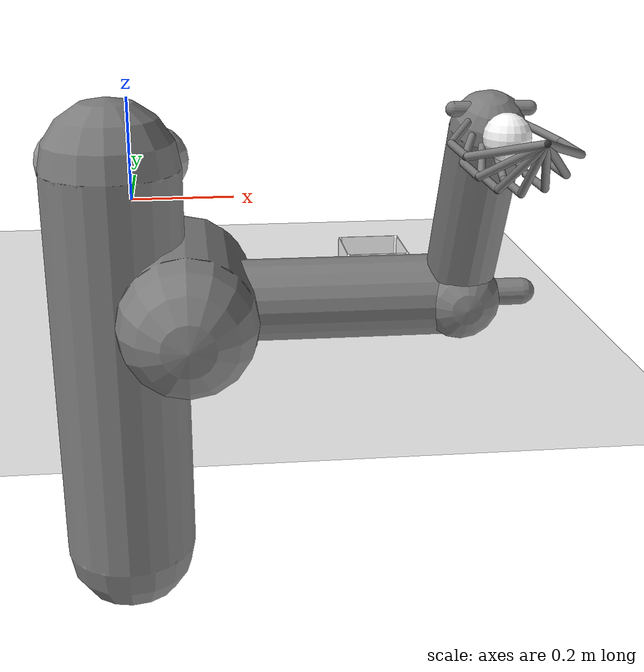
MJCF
<mujoco model="arm3d">
    <compiler inertiafromgeom="true" angle="radian" coordinate="local"/>
    <option timestep="0.01" gravity="0 0 -9.81" iterations="20" integrator="Euler"/>
    <default>
        <joint armature='0.75' damping="1" limited="true"/>
        <geom friction=".8 .1 .1" density="300" margin="0.002" condim="1" contype="0" conaffinity="0"/>
    </default>

    <worldbody>
        <light diffuse=".5 .5 .5" pos="0 0 3" dir="0 0 -1"/>

        <geom type="plane" pos="0 0.5 -0.325" size="1 1 0.1" contype="1" conaffinity="1"/>

        <body name="r_shoulder_pan_link" pos="0 -0.6 0">
            <geom name="e1" type="sphere" rgba="0.6 0.6 0.6 1" pos="-0.06 0.05 0.2" size="0.05" density="0.0001"/>
            <geom name="e2" type="sphere" rgba="0.6 0.6 0.6 1" pos=" 0.06 0.05 0.2" size="0.05" density="0.0001"/>
            <geom name="e1p" type="sphere" rgba="0.1 0.1 0.1 1" pos="-0.06 0.09 0.2" size="0.03" density="0.0001"/>
            <geom name="e2p" type="sphere" rgba="0.1 0.1 0.1 1" pos=" 0.06 0.09 0.2" size="0.03" density="0.0001"/>
            <geom name="sp" type="capsule" fromto="0 0 -0.4 0 0 0.2" size="0.1" density="1"/>
            <joint name="r_shoulder_pan_joint" type="hinge" pos="0 0 0" axis="0 0 1" range="-0.4854 1.214602"
                   damping="1.0"/>

            <body name="r_shoulder_lift_link" pos="0.1 0 0">
                <geom name="sl" type="capsule" fromto="0 -0.1 0 0 0.1 0" size="0.1" density="0.0001"/>
                <joint name="r_shoulder_lift_joint" type="hinge" pos="0 0 0" axis="0 1 0" range="-0.5236 0.7963"
                       damping="1.0"/>

                <body name="r_upper_arm_roll_link" pos="0 0 0">
                    <geom name="uar" type="capsule" fromto="-0.1 0 0 0.1 0 0" size="0.02" density="0.0001"/>
                    <joint name="r_upper_arm_roll_joint" type="hinge" pos="0 0 0" axis="1 0 0" range="-1.5 1.7"
                           damping="1.0"/>

                    <body name="r_upper_arm_link" pos="0 0 0">
                        <geom name="ua" type="capsule" fromto="0 0 0 0.4 0 0" size="0.06" density="0.0001"/>

                        <body name="r_elbow_flex_link" pos="0.4 0 0">
                            <geom name="ef" type="capsule" fromto="0 -0.02 0 0.0 0.02 0" size="0.06" density="0.0001"/>
                            <joint name="r_elbow_flex_joint" type="hinge" pos="0 0 0" axis="0 1 0" range="-0.7 0.7"
                                   damping="1.0"/>

                            <body name="r_forearm_roll_link" pos="0 0 0">
                                <geom name="fr" type="capsule" fromto="-0.1 0 0 0.1 0 0" size="0.02" density="0.0001"/>
                                <joint name="r_forearm_roll_joint" type="hinge" limited="true" pos="0 0 0" axis="1 0 0"
                                       damping="1.0" range="-1.5 1.5"/>

                                <body name="r_forearm_link" pos="0 0 0" axisangle="1 0 0 0.392">
                                    <geom name="fa" type="capsule" fromto="0 0 0 0 0 0.291" size="0.05"
                                          density="0.0001"/>

                                    <body name="r_wrist_flex_link" pos="0 0 0.321" axisangle="0 0 1 1.57">
                                        <geom name="wf" type="capsule" fromto="0 -0.02 0 0 0.02 0" size="0.01"
                                              density="0.0001"/>
                                        <joint name="r_wrist_flex_joint" type="hinge" pos="0 0 0" axis="0 0 1"
                                               range="-1.0 1.0" damping="1.0"/>

                                        <body name="r_wrist_roll_link" pos="0 0 0" axisangle="0 1 0 -1.178">
                                            <joint name="r_wrist_roll_joint" type="hinge" pos="0 0 0" limited="true"
                                                   axis="0 1 0" damping="1.0" range="0 2.25"/>
                                            <geom type="capsule" fromto="0 -0.05 0 0 0.05 0" size="0.01" contype="1"
                                                  conaffinity="1" density="0.0001"/>
                                            <body pos="0 0 0" axisangle="0 0 1 0.392">
                                                <geom type="capsule" fromto="0 0.025 0 0 0.075 0.075" size="0.005"
                                                      contype="1" conaffinity="1" density="0.0001"/>
                                                <geom type="capsule" fromto="0 0.075 0.075 0 0.075 0.15" size="0.005"
                                                      contype="1" conaffinity="1" density=".0001"/>
                                                <geom type="capsule" fromto="0 0.075 0.15 0 0 0.225" size="0.005"
                                                      contype="1" conaffinity="1" density="0.0001"/>
                                            </body>
                                            <body pos="0 0 0" axisangle="0 0 1 1.57">
                                                <geom type="capsule" fromto="0 0.025 0 0 0.075 0.075" size="0.005"
                                                      contype="1" conaffinity="1" density="0.0001"/>
                                                <geom type="capsule" fromto="0 0.075 0.075 0 0.075 0.15" size="0.005"
                                                      contype="1" conaffinity="1" density="0.0001"/>
                                                <geom type="capsule" fromto="0 0.075 0.15 0 0 0.225" size="0.005"
                                                      contype="1" conaffinity="1" density="0.0001"/>
                                            </body>
                                            <body pos="0 0 0" axisangle="0 0 1 1.178">
                                                <geom type="capsule" fromto="0 0.025 0 0 0.075 0.075" size="0.005"
                                                      contype="1" conaffinity="1" density="0.0001"/>
                                                <geom type="capsule" fromto="0 0.075 0.075 0 0.075 0.15" size="0.005"
                                                      contype="1" conaffinity="1" density="0.0001"/>
                                                <geom type="capsule" fromto="0 0.075 0.15 0 0 0.225" size="0.005"
                                                      contype="1" conaffinity="1" density="0.0001"/>
                                            </body>
                                            <body pos="0 0 0" axisangle="0 0 1 0.785">
                                                <geom type="capsule" fromto="0 0.025 0 0 0.075 0.075" size="0.005"
                                                      contype="1" conaffinity="1" density="0.0001"/>
                                                <geom type="capsule" fromto="0 0.075 0.075 0 0.075 0.15" size="0.005"
                                                      contype="1" conaffinity="1" density="0.0001"/>
                                                <geom type="capsule" fromto="0 0.075 0.15 0 0 0.225" size="0.005"
                                                      contype="1" conaffinity="1" density="0.0001"/>
                                            </body>
                                            <body pos="0 0 0" axisangle="0 0 1 1.96">
                                                <geom type="capsule" fromto="0 0.025 0 0 0.075 0.075" size="0.005"
                                                      contype="1" conaffinity="1" density="0.0001"/>
                                                <geom type="capsule" fromto="0 0.075 0.075 0 0.075 0.15" size="0.005"
                                                      contype="1" conaffinity="1" density="0.0001"/>
                                                <geom type="capsule" fromto="0 0.075 0.15 0 0 0.225" size="0.005"
                                                      contype="1" conaffinity="1" density="0.0001"/>
                                            </body>
                                            <body pos="0 0 0" axisangle="0 0 1 2.355">
                                                <geom type="capsule" fromto="0 0.025 0 0 0.075 0.075" size="0.005"
                                                      contype="1" conaffinity="1" density="0.0001"/>
                                                <geom type="capsule" fromto="0 0.075 0.075 0 0.075 0.15" size="0.005"
                                                      contype="1" conaffinity="1" density="0.0001"/>
                                                <geom type="capsule" fromto="0 0.075 0.15 0 0 0.225" size="0.005"
                                                      contype="1" conaffinity="1" density="0.0001"/>
                                            </body>
                                            <body pos="0 0 0" axisangle="0 0 1 2.74">
                                                <geom type="capsule" fromto="0 0.025 0 0 0.075 0.075" size="0.005"
                                                      contype="1" conaffinity="1" density="0.0001"/>
                                                <geom type="capsule" fromto="0 0.075 0.075 0 0.075 0.15" size="0.005"
                                                      contype="1" conaffinity="1" density="0.0001"/>
                                                <geom type="capsule" fromto="0 0.075 0.15 0 0 0.225" size="0.005"
                                                      contype="1" conaffinity="1" density="0.0001"/>
                                            </body>
                                        </body>
                                    </body>
                                </body>
                            </body>
                        </body>
                    </body>
                </body>
            </body>
        </body>

        <body name="goal" pos="0.575 0.5 -0.328">
            <geom rgba="1 1 1 1" type="box" pos="0 0 0.005" size="0.075 0.075 0.001" contype="1" conaffinity="1"
                  density="1000"/>
            <geom rgba="1 1 1 1" type="box" pos="0.0 0.075 0.034" size="0.075 0.001 0.03" contype="1" conaffinity="0"/>
            <geom rgba="1 1 1 1" type="box" pos="0.0 -0.075 0.034" size="0.075 0.001 0.03" contype="1" conaffinity="0"/>
            <geom rgba="1 1 1 1" type="box" pos="0.075 0 0.034" size="0.001 0.075 0.03" contype="1" conaffinity="0"/>
            <geom rgba="1 1 1 1" type="box" pos="-0.076 0 0.034" size="0.001 0.075 0.03" contype="1" conaffinity="0"/>
            <geom rgba="1 1 1 1" type="capsule" fromto="0.073 0.073 0.0075 0.073 0.073 0.06" size="0.005" contype="1"
                  conaffinity="0"/>
            <geom rgba="1 1 1 1" type="capsule" fromto="0.073 -0.073 0.0075 0.073 -0.073 0.06" size="0.005" contype="1"
                  conaffinity="0"/>
            <geom rgba="1 1 1 1" type="capsule" fromto="-0.073 0.073 0.0075 -0.073 0.073 0.06" size="0.005" contype="1"
                  conaffinity="0"/>
            <geom rgba="1 1 1 1" type="capsule" fromto="-0.073 -0.073 0.0075 -0.073 -0.073 0.06" size="0.005"
                  contype="1" conaffinity="0"/>
            <joint name="goal_slidey" type="slide" pos="0 0 0" axis="0 1 0" range="-10.3213 10.3" damping="1.0"/>
            <joint name="goal_slidex" type="slide" pos="0 0 0" axis="1 0 0" range="-10.3213 10.3" damping="1.0"/>
        </body>

        <body name="ball" pos="0.5 -0.8 0.275">
            <geom rgba="1. 1. 1. 1" type="sphere" size="0.03 0.03 0.1" density='25' contype="1" conaffinity="1"/>
            <joint name="ball_free" type="free" armature='0' damping="0" limited="false"/>
        </body>

    </worldbody>

    <actuator>
        <motor joint="r_shoulder_pan_joint" ctrlrange="-10.0 10.0" ctrllimited="true"/>
        <motor joint="r_shoulder_lift_joint" ctrlrange="-10.0 10.0" ctrllimited="true"/>
        <motor joint="r_upper_arm_roll_joint" ctrlrange="-10.0 10.0" ctrllimited="true"/>
        <motor joint="r_elbow_flex_joint" ctrlrange="-10.0 10.0" ctrllimited="true"/>
        <motor joint="r_forearm_roll_joint" ctrlrange="-15.0 15.0" ctrllimited="true"/>
        <motor joint="r_wrist_flex_joint" ctrlrange="-15.0 15.0" ctrllimited="true"/>
        <motor joint="r_wrist_roll_joint" ctrlrange="-15.0 15.0" ctrllimited="true"/>
    </actuator>

</mujoco>
